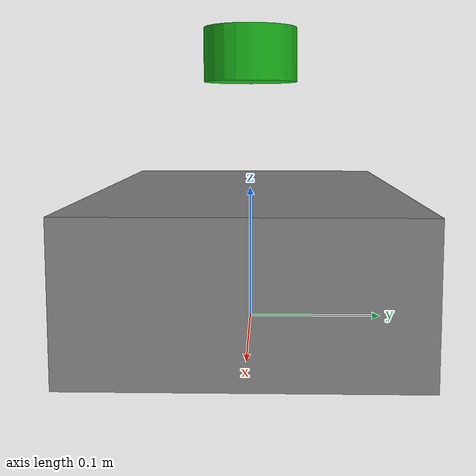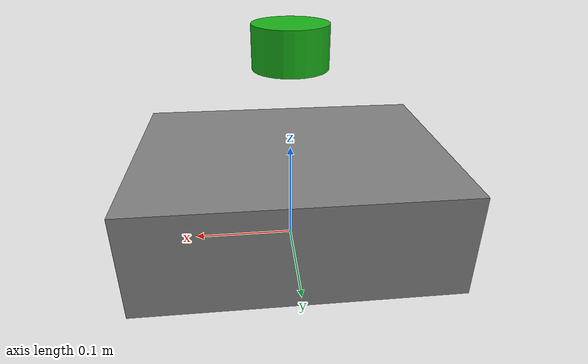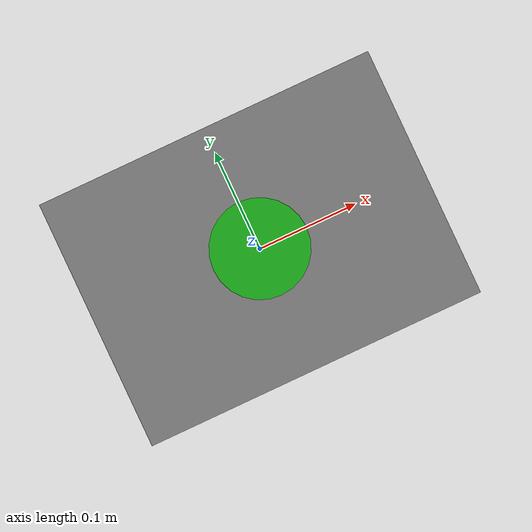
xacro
<?xml version="1.0"?>
<robot name="rover" xmlns:xacro="http://www.ros.org/wiki/xacro">

  <xacro:include filename="$(find rover_description)/urdf/materials.xacro"/>
  <xacro:include filename="$(find rover_description)/urdf/rover_base.xacro"/>
  <xacro:include filename="$(find rover_description)/urdf/wheel.xacro"/>
  <xacro:include filename="$(find rover_description)/urdf/lidar.xacro"/>
  <xacro:include filename="$(find rover_description)/urdf/compass.xacro"/>

  <xacro:rover_base/>

  <!-- Wheels: y = +/- (wheel_base / 2), z = wheel_radius (so wheel touches floor) -->
  <xacro:wheel side="left"  x="0"  y="${ wheel_base/2}" z="${wheel_radius}"/>
  <xacro:wheel side="right" x="0"  y="${-wheel_base/2}" z="${wheel_radius}"/>

  <!-- LiDAR on top of the deck -->
  <xacro:lidar_mount x="0" y="0" z="0.20"/>

  <!-- Compass / magnetometer mount on the upper deck -->
  <xacro:compass_mount x="0.05" y="0" z="0.07"/>

</robot>

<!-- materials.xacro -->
<robot xmlns:xacro="http://www.ros.org/wiki/xacro">

  <material name="grey">
    <color rgba="0.5 0.5 0.5 1.0"/>
  </material>
  <material name="dark_grey">
    <color rgba="0.25 0.25 0.25 1.0"/>
  </material>
  <material name="red">
    <color rgba="0.8 0.1 0.1 1.0"/>
  </material>
  <material name="green">
    <color rgba="0.1 0.7 0.1 1.0"/>
  </material>
  <material name="blue">
    <color rgba="0.1 0.1 0.8 1.0"/>
  </material>
  <material name="yellow">
    <color rgba="0.9 0.9 0.1 1.0"/>
  </material>
  <material name="black">
    <color rgba="0.05 0.05 0.05 1.0"/>
  </material>

</robot>

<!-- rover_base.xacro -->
<robot xmlns:xacro="http://www.ros.org/wiki/xacro">

  <!-- Chassis dimensions -->
  <xacro:property name="chassis_length" value="0.30"/>
  <xacro:property name="chassis_width"  value="0.22"/>
  <xacro:property name="chassis_height" value="0.10"/>
  <xacro:property name="chassis_mass"   value="5.0"/>

  <!-- Wheel/track values mirrored in:
         - ESP32 firmware: firmware/include/config.h
         - rover_hardware/config/diff_drive_params.yaml
       Keep them in sync. -->
  <xacro:property name="wheel_radius" value="0.032"/>
  <xacro:property name="wheel_width"  value="0.04"/>
  <xacro:property name="wheel_mass"   value="0.2"/>
  <xacro:property name="wheel_base"   value="0.150"/>

  <xacro:macro name="rover_base" params="">
    <link name="base_link">
      <visual>
        <origin xyz="0 0 ${chassis_height/2}" rpy="0 0 0"/>
        <geometry>
          <box size="${chassis_length} ${chassis_width} ${chassis_height}"/>
        </geometry>
        <material name="grey"/>
      </visual>

      <collision>
        <origin xyz="0 0 ${chassis_height/2}" rpy="0 0 0"/>
        <geometry>
          <box size="${chassis_length} ${chassis_width} ${chassis_height}"/>
        </geometry>
      </collision>

      <inertial>
        <origin xyz="0 0 ${chassis_height/2}" rpy="0 0 0"/>
        <mass value="${chassis_mass}"/>
        <inertia ixx="0.1" ixy="0.0" ixz="0.0"
                 iyy="0.1" iyz="0.0"
                 izz="0.1"/>
      </inertial>
    </link>
  </xacro:macro>

</robot>

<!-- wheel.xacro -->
<robot xmlns:xacro="http://www.ros.org/wiki/xacro">

  <!-- Single wheel: cylinder whose axis points along Y (robot lateral).
       The continuous joint axis is Y so the wheel spins correctly. -->

  <xacro:macro name="wheel" params="side x y z">
    <link name="wheel_${side}_link">
      <visual>
        <origin xyz="0 0 0" rpy="${pi/2} 0 0"/>
        <geometry>
          <cylinder radius="${wheel_radius}" length="${wheel_width}"/>
        </geometry>
        <material name="black"/>
      </visual>

      <collision>
        <origin xyz="0 0 0" rpy="${pi/2} 0 0"/>
        <geometry>
          <cylinder radius="${wheel_radius}" length="${wheel_width}"/>
        </geometry>
      </collision>

      <inertial>
        <origin xyz="0 0 0" rpy="${pi/2} 0 0"/>
        <mass value="${wheel_mass}"/>
        <inertia ixx="0.001" ixy="0.0" ixz="0.0"
                 iyy="0.001" iyz="0.0"
                 izz="0.001"/>
      </inertial>
    </link>

    <joint name="wheel_${side}_joint" type="continuous">
      <parent link="base_link"/>
      <child link="wheel_${side}_link"/>
      <origin xyz="${x} ${y} ${z}" rpy="0 0 0"/>
      <!-- Wheel spins about its own lateral axis (Y in base_link frame) -->
      <axis xyz="0 1 0"/>
    </joint>
  </xacro:macro>

</robot>

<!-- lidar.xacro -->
<robot xmlns:xacro="http://www.ros.org/wiki/xacro">

  <!-- YDLIDAR A3 mount on top of the chassis -->

  <xacro:macro name="lidar_mount" params="x y z">
    <link name="lidar_link">
      <visual>
        <origin xyz="0 0 0" rpy="0 0 0"/>
        <geometry>
          <cylinder radius="0.035" length="0.04"/>
        </geometry>
        <material name="green"/>
      </visual>

      <collision>
        <origin xyz="0 0 0" rpy="0 0 0"/>
        <geometry>
          <cylinder radius="0.035" length="0.04"/>
        </geometry>
      </collision>

      <inertial>
        <origin xyz="0 0 0" rpy="0 0 0"/>
        <mass value="0.3"/>
        <inertia ixx="0.001" ixy="0.0" ixz="0.0"
                 iyy="0.001" iyz="0.0"
                 izz="0.001"/>
      </inertial>
    </link>

    <joint name="lidar_joint" type="fixed">
      <parent link="base_link"/>
      <child link="lidar_link"/>
      <origin xyz="${x} ${y} ${z}" rpy="0 0 0"/>
    </joint>
  </xacro:macro>

</robot>

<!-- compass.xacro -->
<robot xmlns:xacro="http://www.ros.org/wiki/xacro">

  <xacro:macro name="compass_mount" params="x y z">
    <link name="compass_link">
      <visual>
        <origin xyz="0 0 0" rpy="0 0 0"/>
        <geometry>
          <box size="0.02 0.02 0.005"/>
        </geometry>
        <material name="yellow"/>
      </visual>

      <collision>
        <origin xyz="0 0 0" rpy="0 0 0"/>
        <geometry>
          <box size="0.02 0.02 0.005"/>
        </geometry>
      </collision>

      <inertial>
        <origin xyz="0 0 0" rpy="0 0 0"/>
        <mass value="0.01"/>
        <inertia ixx="0.0001" ixy="0.0" ixz="0.0"
                 iyy="0.0001" iyz="0.0"
                 izz="0.0001"/>
      </inertial>
    </link>

    <joint name="compass_joint" type="fixed">
      <parent link="base_link"/>
      <child link="compass_link"/>
      <origin xyz="${x} ${y} ${z}" rpy="0 0 0"/>
    </joint>
  </xacro:macro>

</robot>
